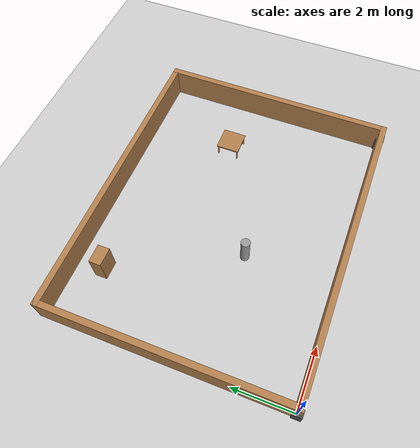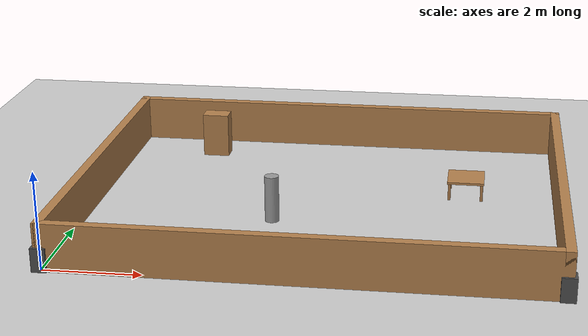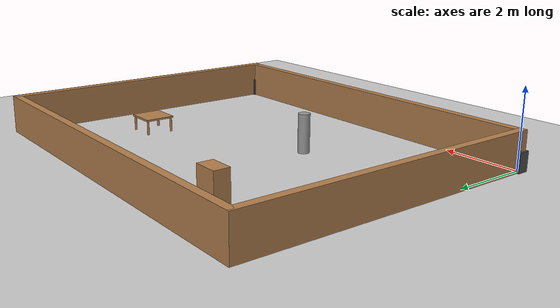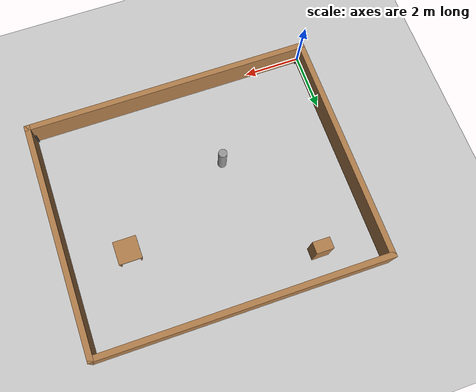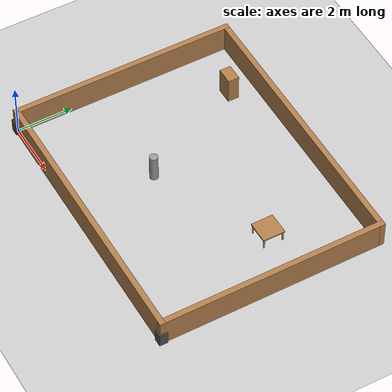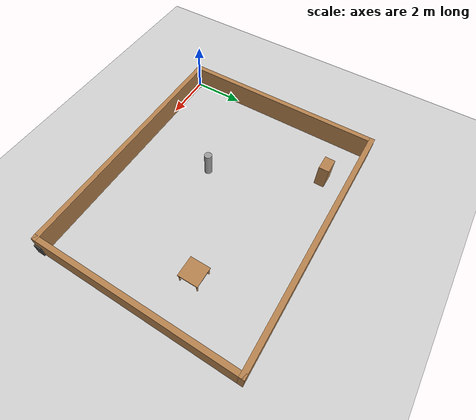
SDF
<?xml version="1.0"?>
<sdf version="1.6">
  <world name="room_world">

    <!-- Physics -->
    <physics type="ode">
      <real_time_update_rate>1000</real_time_update_rate>
      <max_step_size>0.001</max_step_size>
    </physics>

    <!-- Lighting -->
    <light name="sun" type="directional">
      <cast_shadows>true</cast_shadows>
      <pose>0 0 10 0 0 0</pose>
      <diffuse>0.8 0.8 0.8 1</diffuse>
      <specular>0.2 0.2 0.2 1</specular>
      <direction>-0.5 0.1 -0.9</direction>
    </light>

    <!-- Ground Plane -->
    <model name="ground_plane">
      <static>true</static>
      <link name="link">
        <collision name="collision">
          <geometry>
            <plane>
              <normal>0 0 1</normal>
              <size>20 20</size>
            </plane>
          </geometry>
        </collision>
        <visual name="visual">
          <geometry>
            <plane>
              <normal>0 0 1</normal>
              <size>20 20</size>
            </plane>
          </geometry>
          <material>
            <script>
              <uri>file://media/materials/scripts/gazebo.material</uri>
              <name>Gazebo/Grey</name>
            </script>
          </material>
        </visual>
      </link>
    </model>

    <!-- WALLS (10m x 8m room) -->

    <!-- North Wall (y=8) -->
    <model name="wall_north">
      <static>true</static>
      <pose>5 8 0.5 0 0 0</pose>
      <link name="link">
        <collision name="collision">
          <geometry>
            <box>
              <size>10.2 0.2 1</size>
            </box>
          </geometry>
        </collision>
        <visual name="visual">
          <geometry>
            <box>
              <size>10.2 0.2 1</size>
            </box>
          </geometry>
          <material>
            <script>
              <uri>file://media/materials/scripts/gazebo.material</uri>
              <name>Gazebo/Wood</name>
            </script>
          </material>
        </visual>
      </link>
    </model>

    <!-- South Wall (y=0) -->
    <model name="wall_south">
      <static>true</static>
      <pose>5 0 0.5 0 0 0</pose>
      <link name="link">
        <collision name="collision">
          <geometry>
            <box>
              <size>10.2 0.2 1</size>
            </box>
          </geometry>
        </collision>
        <visual name="visual">
          <geometry>
            <box>
              <size>10.2 0.2 1</size>
            </box>
          </geometry>
          <material>
            <script>
              <uri>file://media/materials/scripts/gazebo.material</uri>
              <name>Gazebo/Wood</name>
            </script>
          </material>
        </visual>
      </link>
    </model>

    <!-- East Wall (x=10) -->
    <model name="wall_east">
      <static>true</static>
      <pose>10 4 0.5 0 0 1.5708</pose>
      <link name="link">
        <collision name="collision">
          <geometry>
            <box>
              <size>8.2 0.2 1</size>
            </box>
          </geometry>
        </collision>
        <visual name="visual">
          <geometry>
            <box>
              <size>8.2 0.2 1</size>
            </box>
          </geometry>
          <material>
            <script>
              <uri>file://media/materials/scripts/gazebo.material</uri>
              <name>Gazebo/Wood</name>
            </script>
          </material>
        </visual>
      </link>
    </model>

    <!-- West Wall (x=0) -->
    <model name="wall_west">
      <static>true</static>
      <pose>0 4 0.5 0 0 1.5708</pose>
      <link name="link">
        <collision name="collision">
          <geometry>
            <box>
              <size>8.2 0.2 1</size>
            </box>
          </geometry>
        </collision>
        <visual name="visual">
          <geometry>
            <box>
              <size>8.2 0.2 1</size>
            </box>
          </geometry>
          <material>
            <script>
              <uri>file://media/materials/scripts/gazebo.material</uri>
              <name>Gazebo/Wood</name>
            </script>
          </material>
        </visual>
      </link>
    </model>

    <!-- LANDMARKS -->

    <!-- Landmark A (0, 0) - Wall Corner (Box) -->
    <model name="landmark_A">
      <static>true</static>
      <pose>0 0 0.25 0 0 0</pose>
      <link name="link">
        <collision name="collision">
          <geometry>
            <box>
              <size>0.3 0.3 0.5</size>
            </box>
          </geometry>
        </collision>
        <visual name="visual">
          <geometry>
            <box>
              <size>0.3 0.3 0.5</size>
            </box>
          </geometry>
          <material>
            <script>
              <uri>file://media/materials/scripts/gazebo.material</uri>
              <name>Gazebo/DarkGrey</name>
            </script>
          </material>
        </visual>
      </link>
    </model>

    <!-- Landmark B (10, 0) - Opposite Wall Corner (Box) -->
    <model name="landmark_B">
      <static>true</static>
      <pose>10 0 0.25 0 0 0</pose>
      <link name="link">
        <collision name="collision">
          <geometry>
            <box>
              <size>0.3 0.3 0.5</size>
            </box>
          </geometry>
        </collision>
        <visual name="visual">
          <geometry>
            <box>
              <size>0.3 0.3 0.5</size>
            </box>
          </geometry>
          <material>
            <script>
              <uri>file://media/materials/scripts/gazebo.material</uri>
              <name>Gazebo/DarkGrey</name>
            </script>
          </material>
        </visual>
      </link>
    </model>

    <!-- Landmark C (4, 3) - Pillar (Cylinder) -->
    <model name="landmark_C">
      <static>true</static>
      <pose>4 3 0.5 0 0 0</pose>
      <link name="link">
        <collision name="collision">
          <geometry>
            <cylinder>
              <radius>0.15</radius>
              <length>1.0</length>
            </cylinder>
          </geometry>
        </collision>
        <visual name="visual">
          <geometry>
            <cylinder>
              <radius>0.15</radius>
              <length>1.0</length>
            </cylinder>
          </geometry>
          <material>
            <script>
              <uri>file://media/materials/scripts/gazebo.material</uri>
              <name>Gazebo/Grey</name>
            </script>
          </material>
        </visual>
      </link>
    </model>

    <!-- Landmark D (8, 5) - Table Corner -->
    <model name="landmark_D">
      <static>true</static>
      <pose>8 5 0.4 0 0 0</pose>
      <link name="table_top">
        <collision name="collision">
          <geometry>
            <box>
              <size>0.8 0.8 0.05</size>
            </box>
          </geometry>
        </collision>
        <visual name="visual">
          <geometry>
            <box>
              <size>0.8 0.8 0.05</size>
            </box>
          </geometry>
          <material>
            <script>
              <uri>file://media/materials/scripts/gazebo.material</uri>
              <name>Gazebo/Wood</name>
            </script>
          </material>
        </visual>
      </link>
      <!-- Table legs -->
      <link name="leg1">
        <pose>0.35 0.35 -0.2 0 0 0</pose>
        <collision name="collision">
          <geometry>
            <cylinder>
              <radius>0.03</radius>
              <length>0.4</length>
            </cylinder>
          </geometry>
        </collision>
        <visual name="visual">
          <geometry>
            <cylinder>
              <radius>0.03</radius>
              <length>0.4</length>
            </cylinder>
          </geometry>
          <material>
            <script>
              <uri>file://media/materials/scripts/gazebo.material</uri>
              <name>Gazebo/Wood</name>
            </script>
          </material>
        </visual>
      </link>
      <link name="leg2">
        <pose>-0.35 0.35 -0.2 0 0 0</pose>
        <collision name="collision">
          <geometry>
            <cylinder>
              <radius>0.03</radius>
              <length>0.4</length>
            </cylinder>
          </geometry>
        </collision>
        <visual name="visual">
          <geometry>
            <cylinder>
              <radius>0.03</radius>
              <length>0.4</length>
            </cylinder>
          </geometry>
          <material>
            <script>
              <uri>file://media/materials/scripts/gazebo.material</uri>
              <name>Gazebo/Wood</name>
            </script>
          </material>
        </visual>
      </link>
      <link name="leg3">
        <pose>0.35 -0.35 -0.2 0 0 0</pose>
        <collision name="collision">
          <geometry>
            <cylinder>
              <radius>0.03</radius>
              <length>0.4</length>
            </cylinder>
          </geometry>
        </collision>
        <visual name="visual">
          <geometry>
            <cylinder>
              <radius>0.03</radius>
              <length>0.4</length>
            </cylinder>
          </geometry>
          <material>
            <script>
              <uri>file://media/materials/scripts/gazebo.material</uri>
              <name>Gazebo/Wood</name>
            </script>
          </material>
        </visual>
      </link>
      <link name="leg4">
        <pose>-0.35 -0.35 -0.2 0 0 0</pose>
        <collision name="collision">
          <geometry>
            <cylinder>
              <radius>0.03</radius>
              <length>0.4</length>
            </cylinder>
          </geometry>
        </collision>
        <visual name="visual">
          <geometry>
            <cylinder>
              <radius>0.03</radius>
              <length>0.4</length>
            </cylinder>
          </geometry>
          <material>
            <script>
              <uri>file://media/materials/scripts/gazebo.material</uri>
              <name>Gazebo/Wood</name>
            </script>
          </material>
        </visual>
      </link>
    </model>

    <!-- Landmark E (2, 7) - Cabinet Edge -->
    <model name="landmark_E">
      <static>true</static>
      <pose>2 7 0.5 0 0 0</pose>
      <link name="cabinet">
        <collision name="collision">
          <geometry>
            <box>
              <size>0.6 0.4 1.0</size>
            </box>
          </geometry>
        </collision>
        <visual name="visual">
          <geometry>
            <box>
              <size>0.6 0.4 1.0</size>
            </box>
          </geometry>
          <material>
            <script>
              <uri>file://media/materials/scripts/gazebo.material</uri>
              <name>Gazebo/WoodPallet</name>
            </script>
          </material>
        </visual>
      </link>
    </model>

  </world>
</sdf>
